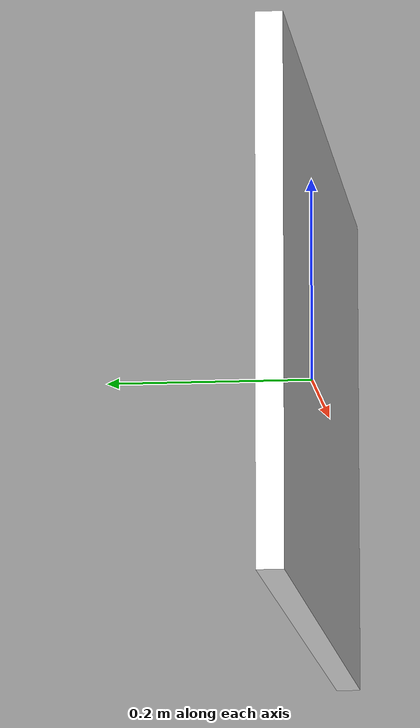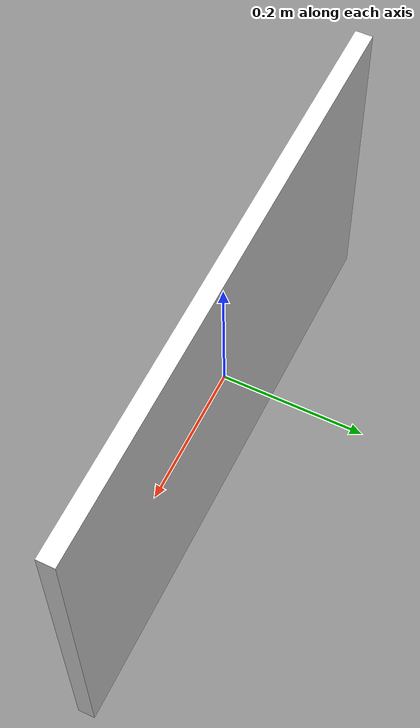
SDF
<?xml version="1.0" ?>
<sdf version="1.10">
  <model name="restaurant_wall_art_bistro">
    <static>true</static>
    <link name="art_link">
      <visual name="art_visual">
        <geometry><box><size>0.85 0.025 0.50</size></box></geometry>
        <material>
          <ambient>1 1 1 1</ambient><diffuse>1 1 1 1</diffuse>
          <pbr><metal><albedo_map>materials/textures/restaurant_wall_art_bistro.png</albedo_map><roughness>0.9</roughness><metalness>0.0</metalness></metal></pbr>
        </material>
      </visual>
      <collision name="art_collision"><geometry><box><size>0.85 0.025 0.50</size></box></geometry></collision>
    </link>
  </model>
</sdf>
